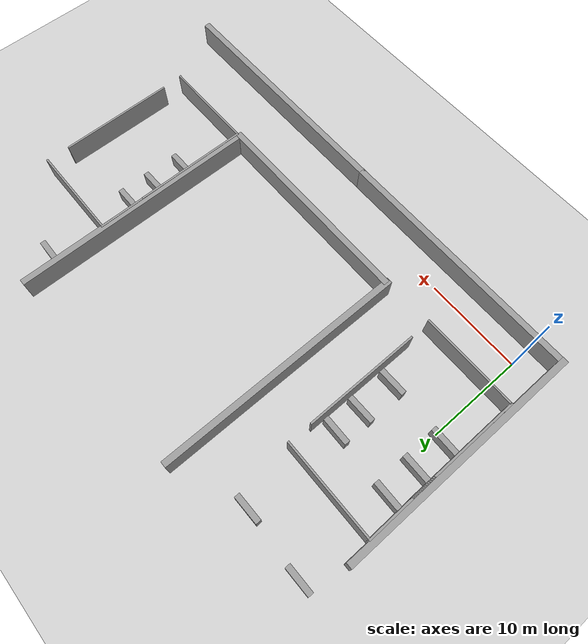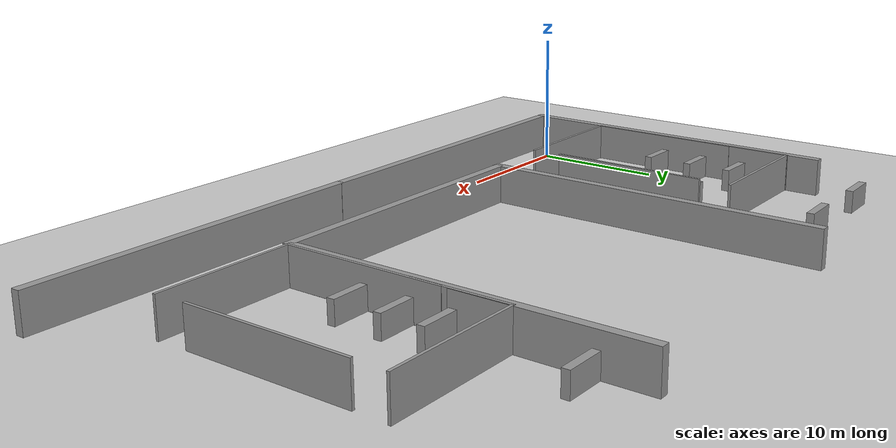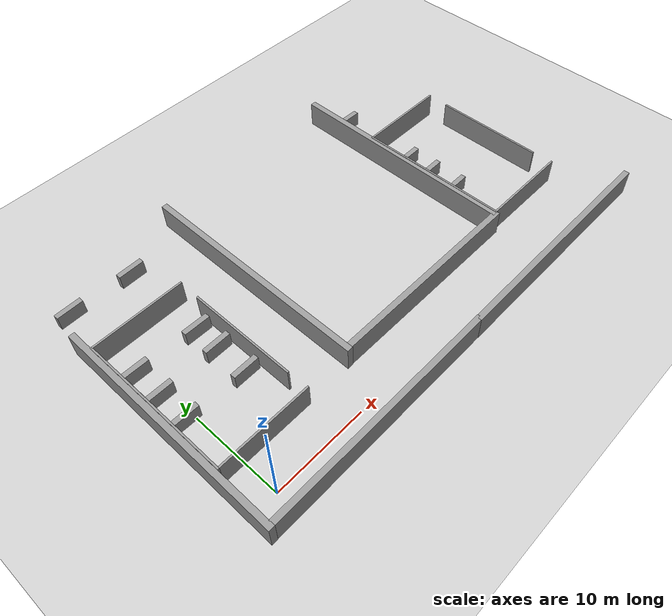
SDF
<sdf version="1.7">
 <world name="default">
  <model name="ground_plane">
   <static>1</static>
   <link name="link">
    <collision name="collision">
     <geometry><plane><normal>0 0 1</normal><size>100 100</size></plane></geometry>
     <surface><friction><ode><mu>100</mu><mu2>50</mu2></ode></friction></surface>
    </collision>
    <visual name="visual">
     <cast_shadows>0</cast_shadows>
     <geometry><plane><normal>0 0 1</normal><size>100 100</size></plane></geometry>
     <material>
      <script><uri>file://media/materials/scripts/gazebo.material</uri><name>Gazebo/Grey</name></script>
     </material>
    </visual>
   </link>
  </model>
  <model name="grey_wall_long">
   <link name="link">
    <pose>0 0 1.37589 0 -0 0</pose>
    <inertial>
     <inertia><ixx>0</ixx><ixy>0</ixy><ixz>0</ixz><iyy>0</iyy><iyz>0</iyz><izz>0</izz></inertia>
     <mass>0</mass>
    </inertial>
    <visual name="visual">
     <cast_shadows>0</cast_shadows>
     <geometry><box><size>25.8815 0.642976 2.8</size></box></geometry>
     <material>
      <script>
       <uri>model://grey_wall/materials/scripts</uri>
       <uri>model://grey_wall/materials/textures</uri>
       <name>vrc/grey_wall</name>
      </script>
      <shader type="pixel"><normal_map>__default__</normal_map></shader>
      <ambient>1 1 1 1</ambient>
      <diffuse>1 1 1 1</diffuse>
      <specular>0 0 0 1</specular>
      <emissive>0 0 0 1</emissive>
     </material>
    </visual>
    <collision name="collision">
     <geometry><box><size>25.8815 0.642976 2.8</size></box></geometry>
     <surface>
      <friction>
       <ode><mu>1</mu><mu2>1</mu2><fdir1>0 0 0</fdir1><slip1>0</slip1><slip2>0</slip2></ode>
       <torsional>
        <coefficient>1</coefficient>
        <patch_radius>0</patch_radius>
        <surface_radius>0</surface_radius>
        <use_patch_radius>1</use_patch_radius>
        <ode><slip>0</slip></ode>
       </torsional>
      </friction>
      <bounce><restitution_coefficient>0</restitution_coefficient><threshold>1e+06</threshold></bounce>
      <contact>
       <collide_without_contact>0</collide_without_contact>
       <collide_without_contact_bitmask>1</collide_without_contact_bitmask>
       <collide_bitmask>1</collide_bitmask>
       <ode>
        <soft_cfm>0</soft_cfm>
        <soft_erp>0.2</soft_erp>
        <kp>1e+13</kp>
        <kd>1</kd>
        <max_vel>0.01</max_vel>
        <min_depth>0</min_depth>
       </ode>
       <bullet>
        <split_impulse>1</split_impulse>
        <split_impulse_penetration_threshold>-0.01</split_impulse_penetration_threshold>
        <soft_cfm>0</soft_cfm>
        <soft_erp>0.2</soft_erp>
        <kp>1e+13</kp>
        <kd>1</kd>
       </bullet>
      </contact>
     </surface>
    </collision>
   </link>
   <static>1</static>
   <pose>10.3524 -2.38269 0 0 -0 0</pose>
  </model>
  <model name="grew_wall_long_vertial">
   <model name="grey_wall_long">
    <link name="link">
     <pose>0 0 1.37589 0 -0 0</pose>
     <inertial>
      <inertia><ixx>0</ixx><ixy>0</ixy><ixz>0</ixz><iyy>0</iyy><iyz>0</iyz><izz>0</izz></inertia>
      <mass>0</mass>
     </inertial>
     <visual name="visual">
      <cast_shadows>0</cast_shadows>
      <geometry><box><size>25.8815 0.642976 2.8</size></box></geometry>
      <material>
       <script>
        <uri>model://grey_wall/materials/scripts</uri>
        <uri>model://grey_wall/materials/textures</uri>
        <name>vrc/grey_wall</name>
       </script>
       <shader type="pixel"><normal_map>__default__</normal_map></shader>
       <ambient>1 1 1 1</ambient>
       <diffuse>1 1 1 1</diffuse>
       <specular>0 0 0 1</specular>
       <emissive>0 0 0 1</emissive>
      </material>
     </visual>
     <collision name="collision">
      <geometry><box><size>25.8815 0.642976 2.8</size></box></geometry>
      <surface>
       <friction>
        <ode><mu>1</mu><mu2>1</mu2><fdir1>0 0 0</fdir1><slip1>0</slip1><slip2>0</slip2></ode>
        <torsional>
         <coefficient>1</coefficient>
         <patch_radius>0</patch_radius>
         <surface_radius>0</surface_radius>
         <use_patch_radius>1</use_patch_radius>
         <ode><slip>0</slip></ode>
        </torsional>
       </friction>
       <bounce><restitution_coefficient>0</restitution_coefficient><threshold>1e+06</threshold></bounce>
       <contact>
        <collide_without_contact>0</collide_without_contact>
        <collide_without_contact_bitmask>1</collide_without_contact_bitmask>
        <collide_bitmask>1</collide_bitmask>
        <ode>
         <soft_cfm>0</soft_cfm>
         <soft_erp>0.2</soft_erp>
         <kp>1e+13</kp>
         <kd>1</kd>
         <max_vel>0.01</max_vel>
         <min_depth>0</min_depth>
        </ode>
        <bullet>
         <split_impulse>1</split_impulse>
         <split_impulse_penetration_threshold>-0.01</split_impulse_penetration_threshold>
         <soft_cfm>0</soft_cfm>
         <soft_erp>0.2</soft_erp>
         <kp>1e+13</kp>
         <kd>1</kd>
        </bullet>
       </contact>
      </surface>
     </collision>
    </link>
    <static>1</static>
    <pose>1e-06 -0 0 0 -0 1.57003</pose>
   </model>
   <static>0</static>
   <pose>-2.8099 10.2266 0 0 -0 0</pose>
  </model>
  <model name="grey_wall_long_0">
   <link name="link">
    <pose>0 0 1.37589 0 -0 0</pose>
    <inertial>
     <inertia><ixx>0</ixx><ixy>0</ixy><ixz>0</ixz><iyy>0</iyy><iyz>0</iyz><izz>0</izz></inertia>
     <mass>0</mass>
    </inertial>
    <visual name="visual">
     <cast_shadows>0</cast_shadows>
     <geometry><box><size>25.8815 0.642976 2.8</size></box></geometry>
     <material>
      <script>
       <uri>model://grey_wall/materials/scripts</uri>
       <uri>model://grey_wall/materials/textures</uri>
       <name>vrc/grey_wall</name>
      </script>
      <shader type="pixel"><normal_map>__default__</normal_map></shader>
      <ambient>1 1 1 1</ambient>
      <diffuse>1 1 1 1</diffuse>
      <specular>0 0 0 1</specular>
      <emissive>0 0 0 1</emissive>
     </material>
    </visual>
    <collision name="collision">
     <geometry><box><size>25.8815 0.642976 2.8</size></box></geometry>
     <surface>
      <friction>
       <ode><mu>1</mu><mu2>1</mu2><fdir1>0 0 0</fdir1><slip1>0</slip1><slip2>0</slip2></ode>
       <torsional>
        <coefficient>1</coefficient>
        <patch_radius>0</patch_radius>
        <surface_radius>0</surface_radius>
        <use_patch_radius>1</use_patch_radius>
        <ode><slip>0</slip></ode>
       </torsional>
      </friction>
      <bounce><restitution_coefficient>0</restitution_coefficient><threshold>1e+06</threshold></bounce>
      <contact>
       <collide_without_contact>0</collide_without_contact>
       <collide_without_contact_bitmask>1</collide_without_contact_bitmask>
       <collide_bitmask>1</collide_bitmask>
       <ode>
        <soft_cfm>0</soft_cfm>
        <soft_erp>0.2</soft_erp>
        <kp>1e+13</kp>
        <kd>1</kd>
        <max_vel>0.01</max_vel>
        <min_depth>0</min_depth>
       </ode>
       <bullet>
        <split_impulse>1</split_impulse>
        <split_impulse_penetration_threshold>-0.01</split_impulse_penetration_threshold>
        <soft_cfm>0</soft_cfm>
        <soft_erp>0.2</soft_erp>
        <kp>1e+13</kp>
        <kd>1</kd>
       </bullet>
      </contact>
     </surface>
    </collision>
   </link>
   <static>1</static>
   <pose>35.9605 -2.39418 0 0 -0 0</pose>
  </model>
  <model name="jiaoshi">
   <model name="grey_wall">
    <static>1</static>
    <link name="link">
     <pose>0 0 1.4 0 -0 0</pose>
     <collision name="collision"><geometry><box><size>7.5 0.2 2.8</size></box></geometry></collision>
     <visual name="visual">
      <cast_shadows>0</cast_shadows>
      <geometry><box><size>7.5 0.2 2.8</size></box></geometry>
      <material>
       <script>
        <uri>model://grey_wall/materials/scripts</uri>
        <uri>model://grey_wall/materials/textures</uri>
        <name>vrc/grey_wall</name>
       </script>
      </material>
     </visual>
    </link>
    <pose>-3.38172 4.2623 0 0 0 -1.56473</pose>
   </model>
   <model name="grey_wall_10m">
    <link name="link">
     <pose>1.25079 -0.023082 1.4 0 -0 0</pose>
     <inertial>
      <inertia><ixx>0</ixx><ixy>0</ixy><ixz>0</ixz><iyy>0</iyy><iyz>0</iyz><izz>0</izz></inertia>
      <mass>0</mass>
     </inertial>
     <visual name="visual">
      <cast_shadows>0</cast_shadows>
      <geometry><box><size>10.0157 0.2 2.8</size></box></geometry>
      <material>
       <script>
        <uri>model://grey_wall/materials/scripts</uri>
        <uri>model://grey_wall/materials/textures</uri>
        <name>vrc/grey_wall</name>
       </script>
       <shader type="pixel"/>
       <ambient>1 1 1 1</ambient>
       <diffuse>1 1 1 1</diffuse>
       <specular>0 0 0 1</specular>
       <emissive>0 0 0 1</emissive>
      </material>
     </visual>
     <collision name="collision">
      <geometry><box><size>10.0157 0.2 2.8</size></box></geometry>
      <surface>
       <friction>
        <ode><mu>1</mu><mu2>1</mu2><fdir1>0 0 0</fdir1><slip1>0</slip1><slip2>0</slip2></ode>
        <torsional>
         <coefficient>1</coefficient>
         <patch_radius>0</patch_radius>
         <surface_radius>0</surface_radius>
         <use_patch_radius>1</use_patch_radius>
         <ode><slip>0</slip></ode>
        </torsional>
       </friction>
       <bounce><restitution_coefficient>0</restitution_coefficient><threshold>1e+06</threshold></bounce>
       <contact>
        <collide_without_contact>0</collide_without_contact>
        <collide_without_contact_bitmask>1</collide_without_contact_bitmask>
        <collide_bitmask>1</collide_bitmask>
        <ode>
         <soft_cfm>0</soft_cfm>
         <soft_erp>0.2</soft_erp>
         <kp>1e+13</kp>
         <kd>1</kd>
         <max_vel>0.01</max_vel>
         <min_depth>0</min_depth>
        </ode>
        <bullet>
         <split_impulse>1</split_impulse>
         <split_impulse_penetration_threshold>-0.01</split_impulse_penetration_threshold>
         <soft_cfm>0</soft_cfm>
         <soft_erp>0.2</soft_erp>
         <kp>1e+13</kp>
         <kd>1</kd>
        </bullet>
       </contact>
      </surface>
     </collision>
    </link>
    <static>1</static>
    <pose>0.433183 -8.77625 0 0 -0 0</pose>
   </model>
   <model name="grey_wall_10m_0">
    <link name="link">
     <pose>1.25079 -0.023082 1.4 0 -0 0</pose>
     <inertial>
      <inertia><ixx>0</ixx><ixy>0</ixy><ixz>0</ixz><iyy>0</iyy><iyz>0</iyz><izz>0</izz></inertia>
      <mass>0</mass>
     </inertial>
     <visual name="visual">
      <cast_shadows>0</cast_shadows>
      <geometry><box><size>10.0157 0.2 2.8</size></box></geometry>
      <material>
       <script>
        <uri>model://grey_wall/materials/scripts</uri>
        <uri>model://grey_wall/materials/textures</uri>
        <name>vrc/grey_wall</name>
       </script>
       <shader type="pixel"/>
       <ambient>1 1 1 1</ambient>
       <diffuse>1 1 1 1</diffuse>
       <specular>0 0 0 1</specular>
       <emissive>0 0 0 1</emissive>
      </material>
     </visual>
     <collision name="collision">
      <geometry><box><size>10.0157 0.2 2.8</size></box></geometry>
      <surface>
       <friction>
        <ode><mu>1</mu><mu2>1</mu2><fdir1>0 0 0</fdir1><slip1>0</slip1><slip2>0</slip2></ode>
        <torsional>
         <coefficient>1</coefficient>
         <patch_radius>0</patch_radius>
         <surface_radius>0</surface_radius>
         <use_patch_radius>1</use_patch_radius>
         <ode><slip>0</slip></ode>
        </torsional>
       </friction>
       <bounce><restitution_coefficient>0</restitution_coefficient><threshold>1e+06</threshold></bounce>
       <contact>
        <collide_without_contact>0</collide_without_contact>
        <collide_without_contact_bitmask>1</collide_without_contact_bitmask>
        <collide_bitmask>1</collide_bitmask>
        <ode>
         <soft_cfm>0</soft_cfm>
         <soft_erp>0.2</soft_erp>
         <kp>1e+13</kp>
         <kd>1</kd>
         <max_vel>0.01</max_vel>
         <min_depth>0</min_depth>
        </ode>
        <bullet>
         <split_impulse>1</split_impulse>
         <split_impulse_penetration_threshold>-0.01</split_impulse_penetration_threshold>
         <soft_cfm>0</soft_cfm>
         <soft_erp>0.2</soft_erp>
         <kp>1e+13</kp>
         <kd>1</kd>
        </bullet>
       </contact>
      </surface>
     </collision>
    </link>
    <static>1</static>
    <pose>0.377364 7.92573 0 0 -0 0</pose>
   </model>
   <model name="grey_wall_12m_vertial">
    <link name="link">
     <pose>0.289112 -0.003891 1.4 0 0 -1.5701</pose>
     <inertial>
      <inertia><ixx>0</ixx><ixy>0</ixy><ixz>0</ixz><iyy>0</iyy><iyz>0</iyz><izz>0</izz></inertia>
      <mass>0</mass>
     </inertial>
     <visual name="visual">
      <cast_shadows>0</cast_shadows>
      <geometry><box><size>12.0527 0.2 2.8</size></box></geometry>
      <material>
       <script>
        <uri>model://grey_wall/materials/scripts</uri>
        <uri>model://grey_wall/materials/textures</uri>
        <name>vrc/grey_wall</name>
       </script>
       <shader type="pixel"/>
       <ambient>1 1 1 1</ambient>
       <diffuse>1 1 1 1</diffuse>
       <specular>0 0 0 1</specular>
       <emissive>0 0 0 1</emissive>
      </material>
     </visual>
     <collision name="collision">
      <geometry><box><size>12.0527 0.2 2.8</size></box></geometry>
      <surface>
       <friction>
        <ode><mu>1</mu><mu2>1</mu2><fdir1>0 0 0</fdir1><slip1>0</slip1><slip2>0</slip2></ode>
        <torsional>
         <coefficient>1</coefficient>
         <patch_radius>0</patch_radius>
         <surface_radius>0</surface_radius>
         <use_patch_radius>1</use_patch_radius>
         <ode><slip>0</slip></ode>
        </torsional>
       </friction>
       <bounce><restitution_coefficient>0</restitution_coefficient><threshold>1e+06</threshold></bounce>
       <contact>
        <collide_without_contact>0</collide_without_contact>
        <collide_without_contact_bitmask>1</collide_without_contact_bitmask>
        <collide_bitmask>1</collide_bitmask>
        <ode>
         <soft_cfm>0</soft_cfm>
         <soft_erp>0.2</soft_erp>
         <kp>1e+13</kp>
         <kd>1</kd>
         <max_vel>0.01</max_vel>
         <min_depth>0</min_depth>
        </ode>
        <bullet>
         <split_impulse>1</split_impulse>
         <split_impulse_penetration_threshold>-0.01</split_impulse_penetration_threshold>
         <soft_cfm>0</soft_cfm>
         <soft_erp>0.2</soft_erp>
         <kp>1e+13</kp>
         <kd>1</kd>
        </bullet>
       </contact>
      </surface>
     </collision>
    </link>
    <static>1</static>
    <pose>-3.63668 -2.87268 0 0 -0 0</pose>
   </model>
   <model name="grey_wall_12m_vertial_0">
    <link name="link">
     <pose>0.289112 -0.003891 1.4 0 0 -1.5701</pose>
     <inertial>
      <inertia><ixx>0</ixx><ixy>0</ixy><ixz>0</ixz><iyy>0</iyy><iyz>0</iyz><izz>0</izz></inertia>
      <mass>0</mass>
     </inertial>
     <visual name="visual">
      <cast_shadows>0</cast_shadows>
      <geometry><box><size>12.0527 0.2 2.8</size></box></geometry>
      <material>
       <script>
        <uri>model://grey_wall/materials/scripts</uri>
        <uri>model://grey_wall/materials/textures</uri>
        <name>vrc/grey_wall</name>
       </script>
       <shader type="pixel"/>
       <ambient>1 1 1 1</ambient>
       <diffuse>1 1 1 1</diffuse>
       <specular>0 0 0 1</specular>
       <emissive>0 0 0 1</emissive>
      </material>
     </visual>
     <collision name="collision">
      <geometry><box><size>12.0527 0.2 2.8</size></box></geometry>
      <surface>
       <friction>
        <ode><mu>1</mu><mu2>1</mu2><fdir1>0 0 0</fdir1><slip1>0</slip1><slip2>0</slip2></ode>
        <torsional>
         <coefficient>1</coefficient>
         <patch_radius>0</patch_radius>
         <surface_radius>0</surface_radius>
         <use_patch_radius>1</use_patch_radius>
         <ode><slip>0</slip></ode>
        </torsional>
       </friction>
       <bounce><restitution_coefficient>0</restitution_coefficient><threshold>1e+06</threshold></bounce>
       <contact>
        <collide_without_contact>0</collide_without_contact>
        <collide_without_contact_bitmask>1</collide_without_contact_bitmask>
        <collide_bitmask>1</collide_bitmask>
        <ode>
         <soft_cfm>0</soft_cfm>
         <soft_erp>0.2</soft_erp>
         <kp>1e+13</kp>
         <kd>1</kd>
         <max_vel>0.01</max_vel>
         <min_depth>0</min_depth>
        </ode>
        <bullet>
         <split_impulse>1</split_impulse>
         <split_impulse_penetration_threshold>-0.01</split_impulse_penetration_threshold>
         <soft_cfm>0</soft_cfm>
         <soft_erp>0.2</soft_erp>
         <kp>1e+13</kp>
         <kd>1</kd>
        </bullet>
       </contact>
      </surface>
     </collision>
    </link>
    <static>1</static>
    <pose>6.20786 -0.539083 0 0 -0 0</pose>
   </model>
   <static>0</static>
   <pose>0.955787 12.705 0 0 -0 0</pose>
  </model>
  <model name="grew_wall_long_vertial_1">
   <model name="grey_wall_long">
    <link name="link">
     <pose>0 0 1.37589 0 -0 0</pose>
     <inertial>
      <inertia><ixx>0</ixx><ixy>0</ixy><ixz>0</ixz><iyy>0</iyy><iyz>0</iyz><izz>0</izz></inertia>
      <mass>0</mass>
     </inertial>
     <visual name="visual">
      <cast_shadows>0</cast_shadows>
      <geometry><box><size>25.8815 0.642976 2.8</size></box></geometry>
      <material>
       <script>
        <uri>model://grey_wall/materials/scripts</uri>
        <uri>model://grey_wall/materials/textures</uri>
        <name>vrc/grey_wall</name>
       </script>
       <shader type="pixel"><normal_map>__default__</normal_map></shader>
       <ambient>1 1 1 1</ambient>
       <diffuse>1 1 1 1</diffuse>
       <specular>0 0 0 1</specular>
       <emissive>0 0 0 1</emissive>
      </material>
     </visual>
     <collision name="collision">
      <geometry><box><size>25.8815 0.642976 2.8</size></box></geometry>
      <surface>
       <friction>
        <ode><mu>1</mu><mu2>1</mu2><fdir1>0 0 0</fdir1><slip1>0</slip1><slip2>0</slip2></ode>
        <torsional>
         <coefficient>1</coefficient>
         <patch_radius>0</patch_radius>
         <surface_radius>0</surface_radius>
         <use_patch_radius>1</use_patch_radius>
         <ode><slip>0</slip></ode>
        </torsional>
       </friction>
       <bounce><restitution_coefficient>0</restitution_coefficient><threshold>1e+06</threshold></bounce>
       <contact>
        <collide_without_contact>0</collide_without_contact>
        <collide_without_contact_bitmask>1</collide_without_contact_bitmask>
        <collide_bitmask>1</collide_bitmask>
        <ode>
         <soft_cfm>0</soft_cfm>
         <soft_erp>0.2</soft_erp>
         <kp>1e+13</kp>
         <kd>1</kd>
         <max_vel>0.01</max_vel>
         <min_depth>0</min_depth>
        </ode>
        <bullet>
         <split_impulse>1</split_impulse>
         <split_impulse_penetration_threshold>-0.01</split_impulse_penetration_threshold>
         <soft_cfm>0</soft_cfm>
         <soft_erp>0.2</soft_erp>
         <kp>1e+13</kp>
         <kd>1</kd>
        </bullet>
       </contact>
      </surface>
     </collision>
    </link>
    <static>1</static>
    <pose>1e-06 -0 0 0 -0 1.57003</pose>
   </model>
   <static>0</static>
   <pose>12.7747 16.7856 0 0 -0 0</pose>
  </model>
  <model name="grew_wall_long_vertial_1_clone_clone_0">
   <model name="grey_wall_long">
    <link name="link">
     <pose>0 0 1.37589 0 -0 0</pose>
     <inertial>
      <inertia><ixx>0</ixx><ixy>0</ixy><ixz>0</ixz><iyy>0</iyy><iyz>0</iyz><izz>0</izz></inertia>
      <mass>0</mass>
     </inertial>
     <visual name="visual">
      <cast_shadows>0</cast_shadows>
      <geometry><box><size>25.8815 0.642976 2.8</size></box></geometry>
      <material>
       <script>
        <uri>model://grey_wall/materials/scripts</uri>
        <uri>model://grey_wall/materials/textures</uri>
        <name>vrc/grey_wall</name>
       </script>
       <shader type="pixel"><normal_map>__default__</normal_map></shader>
       <ambient>1 1 1 1</ambient>
       <diffuse>1 1 1 1</diffuse>
       <specular>0 0 0 1</specular>
       <emissive>0 0 0 1</emissive>
      </material>
     </visual>
     <collision name="collision">
      <geometry><box><size>25.8815 0.642976 2.8</size></box></geometry>
      <surface>
       <friction>
        <ode><mu>1</mu><mu2>1</mu2><fdir1>0 0 0</fdir1><slip1>0</slip1><slip2>0</slip2></ode>
        <torsional>
         <coefficient>1</coefficient>
         <patch_radius>0</patch_radius>
         <surface_radius>0</surface_radius>
         <use_patch_radius>1</use_patch_radius>
         <ode><slip>0</slip></ode>
        </torsional>
       </friction>
       <bounce><restitution_coefficient>0</restitution_coefficient><threshold>1e+06</threshold></bounce>
       <contact>
        <collide_without_contact>0</collide_without_contact>
        <collide_without_contact_bitmask>1</collide_without_contact_bitmask>
        <collide_bitmask>1</collide_bitmask>
        <ode>
         <soft_cfm>0</soft_cfm>
         <soft_erp>0.2</soft_erp>
         <kp>1e+13</kp>
         <kd>1</kd>
         <max_vel>0.01</max_vel>
         <min_depth>0</min_depth>
        </ode>
        <bullet>
         <split_impulse>1</split_impulse>
         <split_impulse_penetration_threshold>-0.01</split_impulse_penetration_threshold>
         <soft_cfm>0</soft_cfm>
         <soft_erp>0.2</soft_erp>
         <kp>1e+13</kp>
         <kd>1</kd>
        </bullet>
       </contact>
      </surface>
     </collision>
    </link>
    <static>1</static>
    <pose>1e-06 -0 0 0 -0 1.57003</pose>
   </model>
   <static>0</static>
   <pose>34.6201 17.1407 0 0 -0 0</pose>
  </model>
  <model name="jiaoshi_clone_clone_clone_2">
   <model name="grey_wall">
    <static>1</static>
    <link name="link">
     <pose>0 0 1.4 0 -0 0</pose>
     <collision name="collision"><geometry><box><size>7.5 0.2 2.8</size></box></geometry></collision>
     <visual name="visual">
      <cast_shadows>0</cast_shadows>
      <geometry><box><size>7.5 0.2 2.8</size></box></geometry>
      <material>
       <script>
        <uri>model://grey_wall/materials/scripts</uri>
        <uri>model://grey_wall/materials/textures</uri>
        <name>vrc/grey_wall</name>
       </script>
      </material>
     </visual>
    </link>
    <pose>-3.38172 4.2623 0 0 0 -1.56473</pose>
   </model>
   <model name="grey_wall_10m">
    <link name="link">
     <pose>1.25079 -0.023082 1.4 0 -0 0</pose>
     <inertial>
      <inertia><ixx>0</ixx><ixy>0</ixy><ixz>0</ixz><iyy>0</iyy><iyz>0</iyz><izz>0</izz></inertia>
      <mass>0</mass>
     </inertial>
     <visual name="visual">
      <cast_shadows>0</cast_shadows>
      <geometry><box><size>10.0157 0.2 2.8</size></box></geometry>
      <material>
       <script>
        <uri>model://grey_wall/materials/scripts</uri>
        <uri>model://grey_wall/materials/textures</uri>
        <name>vrc/grey_wall</name>
       </script>
       <shader type="pixel"/>
       <ambient>1 1 1 1</ambient>
       <diffuse>1 1 1 1</diffuse>
       <specular>0 0 0 1</specular>
       <emissive>0 0 0 1</emissive>
      </material>
     </visual>
     <collision name="collision">
      <geometry><box><size>10.0157 0.2 2.8</size></box></geometry>
      <surface>
       <friction>
        <ode><mu>1</mu><mu2>1</mu2><fdir1>0 0 0</fdir1><slip1>0</slip1><slip2>0</slip2></ode>
        <torsional>
         <coefficient>1</coefficient>
         <patch_radius>0</patch_radius>
         <surface_radius>0</surface_radius>
         <use_patch_radius>1</use_patch_radius>
         <ode><slip>0</slip></ode>
        </torsional>
       </friction>
       <bounce><restitution_coefficient>0</restitution_coefficient><threshold>1e+06</threshold></bounce>
       <contact>
        <collide_without_contact>0</collide_without_contact>
        <collide_without_contact_bitmask>1</collide_without_contact_bitmask>
        <collide_bitmask>1</collide_bitmask>
        <ode>
         <soft_cfm>0</soft_cfm>
         <soft_erp>0.2</soft_erp>
         <kp>1e+13</kp>
         <kd>1</kd>
         <max_vel>0.01</max_vel>
         <min_depth>0</min_depth>
        </ode>
        <bullet>
         <split_impulse>1</split_impulse>
         <split_impulse_penetration_threshold>-0.01</split_impulse_penetration_threshold>
         <soft_cfm>0</soft_cfm>
         <soft_erp>0.2</soft_erp>
         <kp>1e+13</kp>
         <kd>1</kd>
        </bullet>
       </contact>
      </surface>
     </collision>
    </link>
    <static>1</static>
    <pose>0.433183 -8.77625 0 0 -0 0</pose>
   </model>
   <model name="grey_wall_10m_0">
    <link name="link">
     <pose>1.25079 -0.023082 1.4 0 -0 0</pose>
     <inertial>
      <inertia><ixx>0</ixx><ixy>0</ixy><ixz>0</ixz><iyy>0</iyy><iyz>0</iyz><izz>0</izz></inertia>
      <mass>0</mass>
     </inertial>
     <visual name="visual">
      <cast_shadows>0</cast_shadows>
      <geometry><box><size>10.0157 0.2 2.8</size></box></geometry>
      <material>
       <script>
        <uri>model://grey_wall/materials/scripts</uri>
        <uri>model://grey_wall/materials/textures</uri>
        <name>vrc/grey_wall</name>
       </script>
       <shader type="pixel"/>
       <ambient>1 1 1 1</ambient>
       <diffuse>1 1 1 1</diffuse>
       <specular>0 0 0 1</specular>
       <emissive>0 0 0 1</emissive>
      </material>
     </visual>
     <collision name="collision">
      <geometry><box><size>10.0157 0.2 2.8</size></box></geometry>
      <surface>
       <friction>
        <ode><mu>1</mu><mu2>1</mu2><fdir1>0 0 0</fdir1><slip1>0</slip1><slip2>0</slip2></ode>
        <torsional>
         <coefficient>1</coefficient>
         <patch_radius>0</patch_radius>
         <surface_radius>0</surface_radius>
         <use_patch_radius>1</use_patch_radius>
         <ode><slip>0</slip></ode>
        </torsional>
       </friction>
       <bounce><restitution_coefficient>0</restitution_coefficient><threshold>1e+06</threshold></bounce>
       <contact>
        <collide_without_contact>0</collide_without_contact>
        <collide_without_contact_bitmask>1</collide_without_contact_bitmask>
        <collide_bitmask>1</collide_bitmask>
        <ode>
         <soft_cfm>0</soft_cfm>
         <soft_erp>0.2</soft_erp>
         <kp>1e+13</kp>
         <kd>1</kd>
         <max_vel>0.01</max_vel>
         <min_depth>0</min_depth>
        </ode>
        <bullet>
         <split_impulse>1</split_impulse>
         <split_impulse_penetration_threshold>-0.01</split_impulse_penetration_threshold>
         <soft_cfm>0</soft_cfm>
         <soft_erp>0.2</soft_erp>
         <kp>1e+13</kp>
         <kd>1</kd>
        </bullet>
       </contact>
      </surface>
     </collision>
    </link>
    <static>1</static>
    <pose>0.377364 7.92573 0 0 -0 0</pose>
   </model>
   <model name="grey_wall_12m_vertial">
    <link name="link">
     <pose>0.289112 -0.003891 1.4 0 0 -1.5701</pose>
     <inertial>
      <inertia><ixx>0</ixx><ixy>0</ixy><ixz>0</ixz><iyy>0</iyy><iyz>0</iyz><izz>0</izz></inertia>
      <mass>0</mass>
     </inertial>
     <visual name="visual">
      <cast_shadows>0</cast_shadows>
      <geometry><box><size>12.0527 0.2 2.8</size></box></geometry>
      <material>
       <script>
        <uri>model://grey_wall/materials/scripts</uri>
        <uri>model://grey_wall/materials/textures</uri>
        <name>vrc/grey_wall</name>
       </script>
       <shader type="pixel"/>
       <ambient>1 1 1 1</ambient>
       <diffuse>1 1 1 1</diffuse>
       <specular>0 0 0 1</specular>
       <emissive>0 0 0 1</emissive>
      </material>
     </visual>
     <collision name="collision">
      <geometry><box><size>12.0527 0.2 2.8</size></box></geometry>
      <surface>
       <friction>
        <ode><mu>1</mu><mu2>1</mu2><fdir1>0 0 0</fdir1><slip1>0</slip1><slip2>0</slip2></ode>
        <torsional>
         <coefficient>1</coefficient>
         <patch_radius>0</patch_radius>
         <surface_radius>0</surface_radius>
         <use_patch_radius>1</use_patch_radius>
         <ode><slip>0</slip></ode>
        </torsional>
       </friction>
       <bounce><restitution_coefficient>0</restitution_coefficient><threshold>1e+06</threshold></bounce>
       <contact>
        <collide_without_contact>0</collide_without_contact>
        <collide_without_contact_bitmask>1</collide_without_contact_bitmask>
        <collide_bitmask>1</collide_bitmask>
        <ode>
         <soft_cfm>0</soft_cfm>
         <soft_erp>0.2</soft_erp>
         <kp>1e+13</kp>
         <kd>1</kd>
         <max_vel>0.01</max_vel>
         <min_depth>0</min_depth>
        </ode>
        <bullet>
         <split_impulse>1</split_impulse>
         <split_impulse_penetration_threshold>-0.01</split_impulse_penetration_threshold>
         <soft_cfm>0</soft_cfm>
         <soft_erp>0.2</soft_erp>
         <kp>1e+13</kp>
         <kd>1</kd>
        </bullet>
       </contact>
      </surface>
     </collision>
    </link>
    <static>1</static>
    <pose>-3.63668 -2.87268 0 0 -0 0</pose>
   </model>
   <model name="grey_wall_12m_vertial_0">
    <link name="link">
     <pose>0.289112 -0.003891 1.4 0 0 -1.5701</pose>
     <inertial>
      <inertia><ixx>0</ixx><ixy>0</ixy><ixz>0</ixz><iyy>0</iyy><iyz>0</iyz><izz>0</izz></inertia>
      <mass>0</mass>
     </inertial>
     <visual name="visual">
      <cast_shadows>0</cast_shadows>
      <geometry><box><size>12.0527 0.2 2.8</size></box></geometry>
      <material>
       <script>
        <uri>model://grey_wall/materials/scripts</uri>
        <uri>model://grey_wall/materials/textures</uri>
        <name>vrc/grey_wall</name>
       </script>
       <shader type="pixel"/>
       <ambient>1 1 1 1</ambient>
       <diffuse>1 1 1 1</diffuse>
       <specular>0 0 0 1</specular>
       <emissive>0 0 0 1</emissive>
      </material>
     </visual>
     <collision name="collision">
      <geometry><box><size>12.0527 0.2 2.8</size></box></geometry>
      <surface>
       <friction>
        <ode><mu>1</mu><mu2>1</mu2><fdir1>0 0 0</fdir1><slip1>0</slip1><slip2>0</slip2></ode>
        <torsional>
         <coefficient>1</coefficient>
         <patch_radius>0</patch_radius>
         <surface_radius>0</surface_radius>
         <use_patch_radius>1</use_patch_radius>
         <ode><slip>0</slip></ode>
        </torsional>
       </friction>
       <bounce><restitution_coefficient>0</restitution_coefficient><threshold>1e+06</threshold></bounce>
       <contact>
        <collide_without_contact>0</collide_without_contact>
        <collide_without_contact_bitmask>1</collide_without_contact_bitmask>
        <collide_bitmask>1</collide_bitmask>
        <ode>
         <soft_cfm>0</soft_cfm>
         <soft_erp>0.2</soft_erp>
         <kp>1e+13</kp>
         <kd>1</kd>
         <max_vel>0.01</max_vel>
         <min_depth>0</min_depth>
        </ode>
        <bullet>
         <split_impulse>1</split_impulse>
         <split_impulse_penetration_threshold>-0.01</split_impulse_penetration_threshold>
         <soft_cfm>0</soft_cfm>
         <soft_erp>0.2</soft_erp>
         <kp>1e+13</kp>
         <kd>1</kd>
        </bullet>
       </contact>
      </surface>
     </collision>
    </link>
    <static>1</static>
    <pose>6.20786 -0.539083 0 0 -0 0</pose>
   </model>
   <static>0</static>
   <pose>38.2185 13.1543 0 0 -0 0</pose>
  </model>
  <model name="grey_wall_long_term_clone">
   <link name="link">
    <pose>-1.74587 -0.378849 1.37589 0 -0 0</pose>
    <inertial>
     <inertia><ixx>0</ixx><ixy>0</ixy><ixz>0</ixz><iyy>0</iyy><iyz>0</iyz><izz>0</izz></inertia>
     <mass>0</mass>
    </inertial>
    <visual name="visual">
     <cast_shadows>0</cast_shadows>
     <geometry><box><size>22.1596 0.642976 2.8</size></box></geometry>
     <material>
      <script>
       <uri>model://grey_wall/materials/scripts</uri>
       <uri>model://grey_wall/materials/textures</uri>
       <name>vrc/grey_wall</name>
      </script>
      <shader type="pixel"><normal_map>__default__</normal_map></shader>
      <ambient>1 1 1 1</ambient>
      <diffuse>1 1 1 1</diffuse>
      <specular>0 0 0 1</specular>
      <emissive>0 0 0 1</emissive>
     </material>
    </visual>
    <collision name="collision">
     <geometry><box><size>22.1596 0.642976 2.8</size></box></geometry>
     <surface>
      <friction>
       <ode><mu>1</mu><mu2>1</mu2><fdir1>0 0 0</fdir1><slip1>0</slip1><slip2>0</slip2></ode>
       <torsional>
        <coefficient>1</coefficient>
        <patch_radius>0</patch_radius>
        <surface_radius>0</surface_radius>
        <use_patch_radius>1</use_patch_radius>
        <ode><slip>0</slip></ode>
       </torsional>
      </friction>
      <bounce><restitution_coefficient>0</restitution_coefficient><threshold>1e+06</threshold></bounce>
      <contact>
       <collide_without_contact>0</collide_without_contact>
       <collide_without_contact_bitmask>1</collide_without_contact_bitmask>
       <collide_bitmask>1</collide_bitmask>
       <ode>
        <soft_cfm>0</soft_cfm>
        <soft_erp>0.2</soft_erp>
        <kp>1e+13</kp>
        <kd>1</kd>
        <max_vel>0.01</max_vel>
        <min_depth>0</min_depth>
       </ode>
       <bullet>
        <split_impulse>1</split_impulse>
        <split_impulse_penetration_threshold>-0.01</split_impulse_penetration_threshold>
        <soft_cfm>0</soft_cfm>
        <soft_erp>0.2</soft_erp>
        <kp>1e+13</kp>
        <kd>1</kd>
       </bullet>
      </contact>
     </surface>
    </collision>
   </link>
   <static>1</static>
   <pose>25.5567 4.60243 0 0 -0 0</pose>
  </model>
  <model name="unit_box_clone_8">
   <pose>-1.03753 26.7455 0.834396 -0 -3.2e-05 0.013036</pose>
   <link name="link">
    <inertial>
     <mass>1</mass>
     <inertia>
      <ixx>0.166667</ixx>
      <ixy>0</ixy>
      <ixz>0</ixz>
      <iyy>0.166667</iyy>
      <iyz>0</iyz>
      <izz>0.166667</izz>
     </inertia>
    </inertial>
    <collision name="collision"><geometry><box><size>2.81196 0.562598 1.66888</size></box></geometry></collision>
    <visual name="visual">
     <geometry><box><size>2.81196 0.562598 1.66888</size></box></geometry>
     <material>
      <script><name>Gazebo/Grey</name><uri>file://media/materials/scripts/gazebo.material</uri></script>
     </material>
    </visual>
   </link>
  </model>
  <model name="unit_box_clone_9">
   <pose>5.7446 26.4941 0.834396 0 3.2e-05 0.013738</pose>
   <link name="link">
    <inertial>
     <mass>1</mass>
     <inertia>
      <ixx>0.166667</ixx>
      <ixy>0</ixy>
      <ixz>0</ixz>
      <iyy>0.166667</iyy>
      <iyz>0</iyz>
      <izz>0.166667</izz>
     </inertia>
    </inertial>
    <collision name="collision"><geometry><box><size>2.81196 0.562598 1.66888</size></box></geometry></collision>
    <visual name="visual">
     <geometry><box><size>2.81196 0.562598 1.66888</size></box></geometry>
     <material>
      <script><name>Gazebo/Grey</name><uri>file://media/materials/scripts/gazebo.material</uri></script>
     </material>
    </visual>
   </link>
  </model>
  <model name="unit_box_clone_10">
   <pose>-0.914323 16.9871 0.834396 -0 3.2e-05 -0.013497</pose>
   <link name="link">
    <inertial>
     <mass>1</mass>
     <inertia>
      <ixx>0.166667</ixx>
      <ixy>0</ixy>
      <ixz>0</ixz>
      <iyy>0.166667</iyy>
      <iyz>0</iyz>
      <izz>0.166667</izz>
     </inertia>
    </inertial>
    <collision name="collision"><geometry><box><size>2.81196 0.562598 1.66888</size></box></geometry></collision>
    <visual name="visual">
     <geometry><box><size>2.81196 0.562598 1.66888</size></box></geometry>
     <material>
      <script><name>Gazebo/Grey</name><uri>file://media/materials/scripts/gazebo.material</uri></script>
     </material>
    </visual>
   </link>
  </model>
  <model name="unit_box_clone_11">
   <pose>5.77058 16.6638 0.834396 -0 3.2e-05 -0.013464</pose>
   <link name="link">
    <inertial>
     <mass>1</mass>
     <inertia>
      <ixx>0.166667</ixx>
      <ixy>0</ixy>
      <ixz>0</ixz>
      <iyy>0.166667</iyy>
      <iyz>0</iyz>
      <izz>0.166667</izz>
     </inertia>
    </inertial>
    <collision name="collision"><geometry><box><size>2.81196 0.562598 1.66888</size></box></geometry></collision>
    <visual name="visual">
     <geometry><box><size>2.81196 0.562598 1.66888</size></box></geometry>
     <material>
      <script><name>Gazebo/Grey</name><uri>file://media/materials/scripts/gazebo.material</uri></script>
     </material>
    </visual>
   </link>
  </model>
  <model name="unit_box_clone_12">
   <pose>-0.879886 13.6197 0.834396 0 -3.2e-05 -0.007922</pose>
   <link name="link">
    <inertial>
     <mass>1</mass>
     <inertia>
      <ixx>0.166667</ixx>
      <ixy>0</ixy>
      <ixz>0</ixz>
      <iyy>0.166667</iyy>
      <iyz>0</iyz>
      <izz>0.166667</izz>
     </inertia>
    </inertial>
    <collision name="collision"><geometry><box><size>2.81196 0.562598 1.66888</size></box></geometry></collision>
    <visual name="visual">
     <geometry><box><size>2.81196 0.562598 1.66888</size></box></geometry>
     <material>
      <script><name>Gazebo/Grey</name><uri>file://media/materials/scripts/gazebo.material</uri></script>
     </material>
    </visual>
   </link>
  </model>
  <model name="unit_box_clone_13">
   <pose>5.75164 13.7885 0.834396 0 3.2e-05 0.01389</pose>
   <link name="link">
    <inertial>
     <mass>1</mass>
     <inertia>
      <ixx>0.166667</ixx>
      <ixy>0</ixy>
      <ixz>0</ixz>
      <iyy>0.166667</iyy>
      <iyz>0</iyz>
      <izz>0.166667</izz>
     </inertia>
    </inertial>
    <collision name="collision"><geometry><box><size>2.81196 0.562598 1.66888</size></box></geometry></collision>
    <visual name="visual">
     <geometry><box><size>2.81196 0.562598 1.66888</size></box></geometry>
     <material>
      <script><name>Gazebo/Grey</name><uri>file://media/materials/scripts/gazebo.material</uri></script>
     </material>
    </visual>
   </link>
  </model>
  <model name="unit_box_clone_14">
   <pose>-0.877411 10.1897 0.834396 0 -3.2e-05 -0.013988</pose>
   <link name="link">
    <inertial>
     <mass>1</mass>
     <inertia>
      <ixx>0.166667</ixx>
      <ixy>0</ixy>
      <ixz>0</ixz>
      <iyy>0.166667</iyy>
      <iyz>0</iyz>
      <izz>0.166667</izz>
     </inertia>
    </inertial>
    <collision name="collision"><geometry><box><size>2.81196 0.562598 1.66888</size></box></geometry></collision>
    <visual name="visual">
     <geometry><box><size>2.81196 0.562598 1.66888</size></box></geometry>
     <material>
      <script><name>Gazebo/Grey</name><uri>file://media/materials/scripts/gazebo.material</uri></script>
     </material>
    </visual>
   </link>
  </model>
  <model name="unit_box_clone_15">
   <pose>5.74347 9.99794 0.834396 0 -3.2e-05 0.013588</pose>
   <link name="link">
    <inertial>
     <mass>1</mass>
     <inertia>
      <ixx>0.166667</ixx>
      <ixy>0</ixy>
      <ixz>0</ixz>
      <iyy>0.166667</iyy>
      <iyz>0</iyz>
      <izz>0.166667</izz>
     </inertia>
    </inertial>
    <collision name="collision"><geometry><box><size>2.81196 0.562598 1.66888</size></box></geometry></collision>
    <visual name="visual">
     <geometry><box><size>2.81196 0.562598 1.66888</size></box></geometry>
     <material>
      <script><name>Gazebo/Grey</name><uri>file://media/materials/scripts/gazebo.material</uri></script>
     </material>
    </visual>
   </link>
  </model>
  <model name="unit_box_clone_26">
   <pose>36.3893 26.3332 0.834396 0 -3.2e-05 -0.013664</pose>
   <link name="link">
    <inertial>
     <mass>1</mass>
     <inertia>
      <ixx>0.166667</ixx>
      <ixy>0</ixy>
      <ixz>0</ixz>
      <iyy>0.166667</iyy>
      <iyz>0</iyz>
      <izz>0.166667</izz>
     </inertia>
    </inertial>
    <collision name="collision"><geometry><box><size>2.81196 0.562598 1.66888</size></box></geometry></collision>
    <visual name="visual">
     <geometry><box><size>2.81196 0.562598 1.66888</size></box></geometry>
     <material>
      <script><name>Gazebo/Grey</name><uri>file://media/materials/scripts/gazebo.material</uri></script>
     </material>
    </visual>
   </link>
  </model>
  <model name="unit_box_clone_28">
   <pose>36.3886 17.1342 0.834396 0 3.2e-05 0.012659</pose>
   <link name="link">
    <inertial>
     <mass>1</mass>
     <inertia>
      <ixx>0.166667</ixx>
      <ixy>0</ixy>
      <ixz>0</ixz>
      <iyy>0.166667</iyy>
      <iyz>0</iyz>
      <izz>0.166667</izz>
     </inertia>
    </inertial>
    <collision name="collision"><geometry><box><size>2.81196 0.562598 1.66888</size></box></geometry></collision>
    <visual name="visual">
     <geometry><box><size>2.81196 0.562598 1.66888</size></box></geometry>
     <material>
      <script><name>Gazebo/Grey</name><uri>file://media/materials/scripts/gazebo.material</uri></script>
     </material>
    </visual>
   </link>
  </model>
  <model name="unit_box_clone_30">
   <pose>36.3795 14.0391 0.834396 -0 -3.2e-05 0.013042</pose>
   <link name="link">
    <inertial>
     <mass>1</mass>
     <inertia>
      <ixx>0.166667</ixx>
      <ixy>0</ixy>
      <ixz>0</ixz>
      <iyy>0.166667</iyy>
      <iyz>0</iyz>
      <izz>0.166667</izz>
     </inertia>
    </inertial>
    <collision name="collision"><geometry><box><size>2.81196 0.562598 1.66888</size></box></geometry></collision>
    <visual name="visual">
     <geometry><box><size>2.81196 0.562598 1.66888</size></box></geometry>
     <material>
      <script><name>Gazebo/Grey</name><uri>file://media/materials/scripts/gazebo.material</uri></script>
     </material>
    </visual>
   </link>
  </model>
  <model name="unit_box_clone_32">
   <pose>36.3838 10.5762 0.834396 0 -3.2e-05 0.013358</pose>
   <link name="link">
    <inertial>
     <mass>1</mass>
     <inertia>
      <ixx>0.166667</ixx>
      <ixy>0</ixy>
      <ixz>0</ixz>
      <iyy>0.166667</iyy>
      <iyz>0</iyz>
      <izz>0.166667</izz>
     </inertia>
    </inertial>
    <collision name="collision"><geometry><box><size>2.81196 0.562598 1.66888</size></box></geometry></collision>
    <visual name="visual">
     <geometry><box><size>2.81196 0.562598 1.66888</size></box></geometry>
     <material>
      <script><name>Gazebo/Grey</name><uri>file://media/materials/scripts/gazebo.material</uri></script>
     </material>
    </visual>
   </link>
  </model>
 </world>
</sdf>
